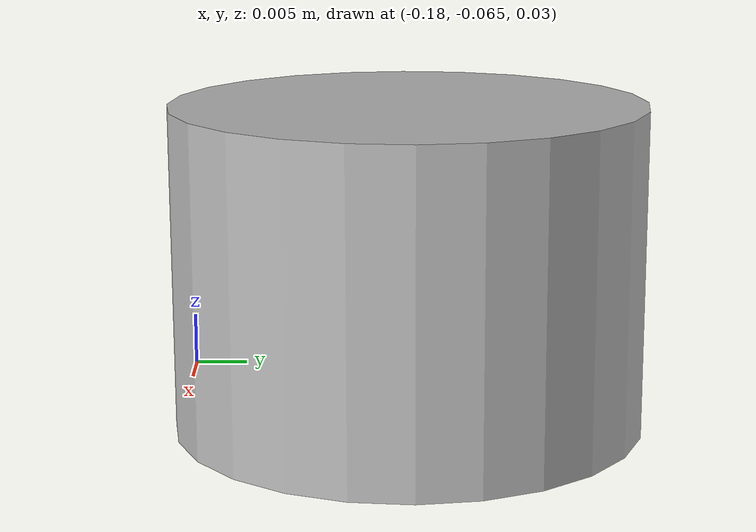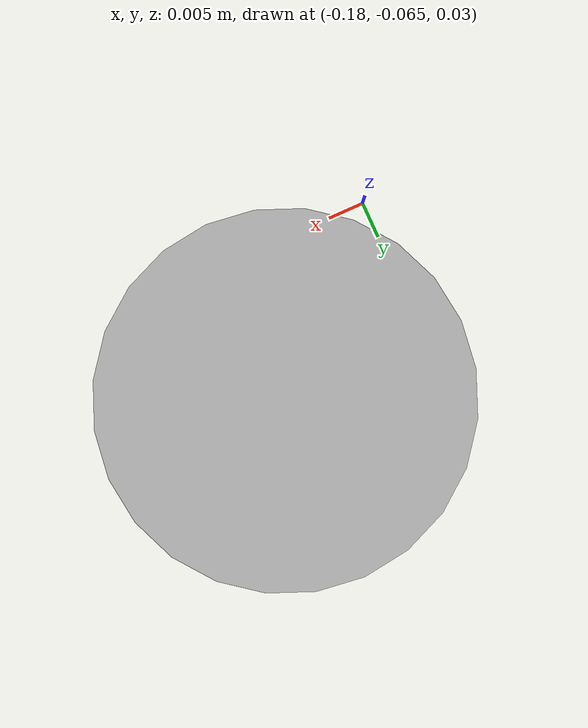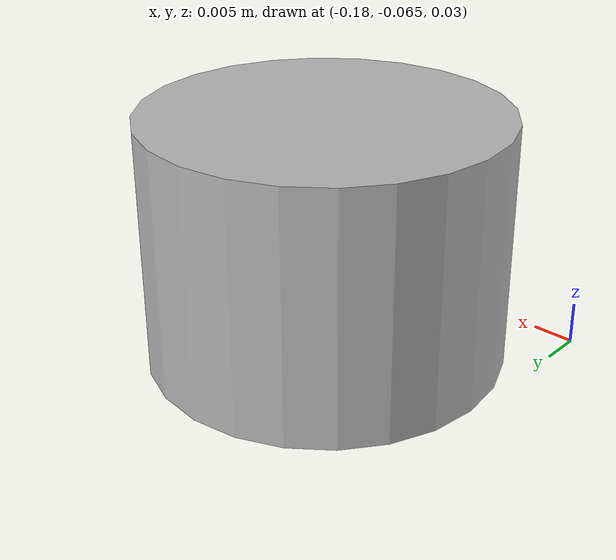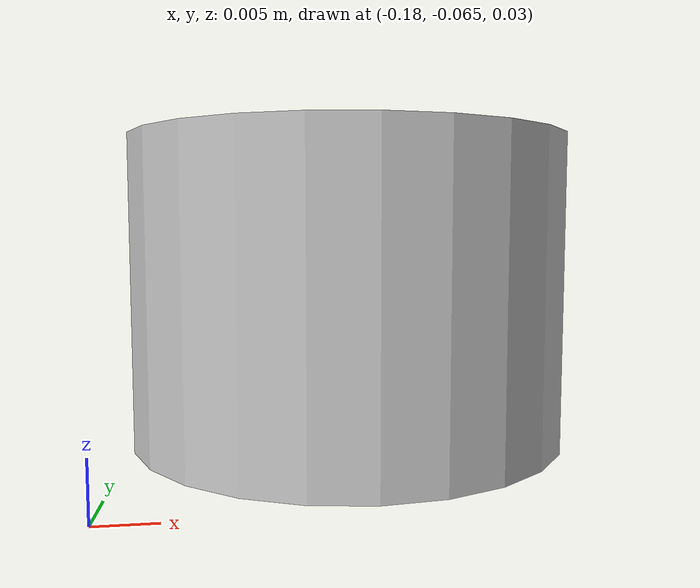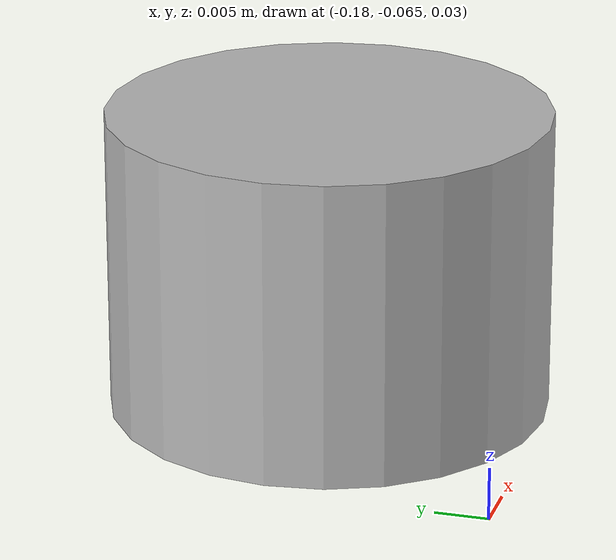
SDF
<?xml version='1.0'?>
<sdf version='1.6'>
    <model name='fpv_cam'>
    <pose>-0.158979 -0.04405 0.045074 0 -0 0</pose>
      <link name='cam_link'>
        <inertial>
          <mass>0.015</mass>
          <inertia>
            <ixx>4.15e-6</ixx>
          <ixy>0</ixy>
          <ixz>0</ixz>
          <iyy>2.407e-6</iyy>
          <iyz>0</iyz>
          <izz>2.407e-6</izz>
          </inertia>
        </inertial>
        <collision name='collision'>
          <geometry>
            <cylinder>
              <radius>0.021</radius>
              <length>0.029</length>
            </cylinder>
          </geometry>
          <max_contacts>10</max_contacts>
          <surface>
            <contact>
              <ode/>
            </contact>
            <bounce/>
            <friction>
              <ode/>
            </friction>
          </surface>
        </collision>
        <visual name='visual'>
          <geometry>
            <cylinder>
              <radius>0.021</radius>
              <length>0.029</length>
            </cylinder>
          </geometry>
        </visual>
        <sensor name='camera' type='camera'>
          <camera name='__default__'>
            <horizontal_fov>1.047</horizontal_fov>
            <image>
              <width>320</width>
              <height>240</height>
            </image>
            <clip>
              <near>0.1</near>
              <far>100</far>
            </clip>
            <lens>
              <type>custom</type>
              <custom_function>
                <c1>1.05</c1>
                <c2>4</c2>
                <f>1</f>
                <fun>tan</fun>
              </custom_function>
              <scale_to_hfov>1</scale_to_hfov>
              <cutoff_angle>3.1415</cutoff_angle>
              <env_texture_size>1080</env_texture_size>
            </lens>
          </camera>
          <always_on>1</always_on>
          <update_rate>30</update_rate>
          <visualize>1</visualize>
          <plugin name='camera_plugin' filename='libgazebo_ros_camera.so'>
              <robotNamespace></robotNamespace>
            <alwaysOn>true</alwaysOn>
            <imageTopicName>image_raw</imageTopicName>
            <cameraInfoTopicName>camera_info</cameraInfoTopicName>
            <updateRate>30.0</updateRate>
            <cameraName>usb_cam</cameraName>
            <frameName>/robot_camera_link</frameName>
            <CxPrime>320.5</CxPrime>
            <Cx>320.5</Cx>
            <Cy>240.5</Cy>
            <hackBaseline>0</hackBaseline>
            <focalLength>277.191356</focalLength>
            <distortionK1>0.0</distortionK1>
            <distortionK2>0.0</distortionK2>
            <distortionK3>0.0</distortionK3>
            <distortionT1>0.0</distortionT1>
            <distortionT2>0.0</distortionT2>
          </plugin>
          <!-- GStreamer camera plugin (needs a lot of CPU! Consider lowering the
             camera image size) -->
          <plugin name="GstCameraPlugin" filename="libgazebo_gst_camera_plugin.so">
            <robotNamespace></robotNamespace>
            <udpPort>5600</udpPort>
          </plugin>
        </sensor>
        <self_collide>0</self_collide>
        <kinematic>0</kinematic>
      </link>
  </model>
</sdf>
